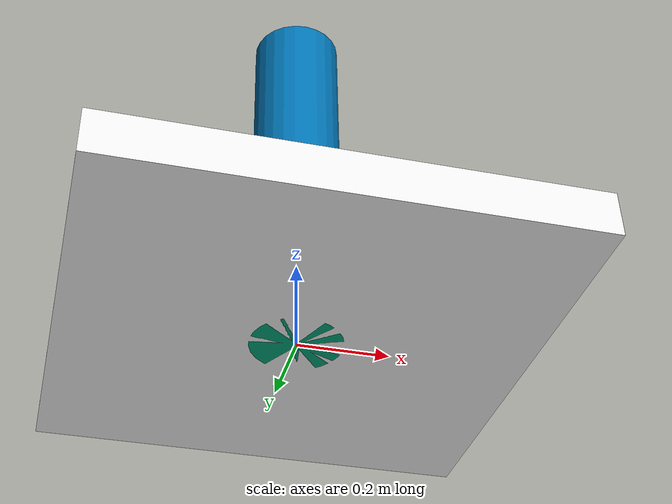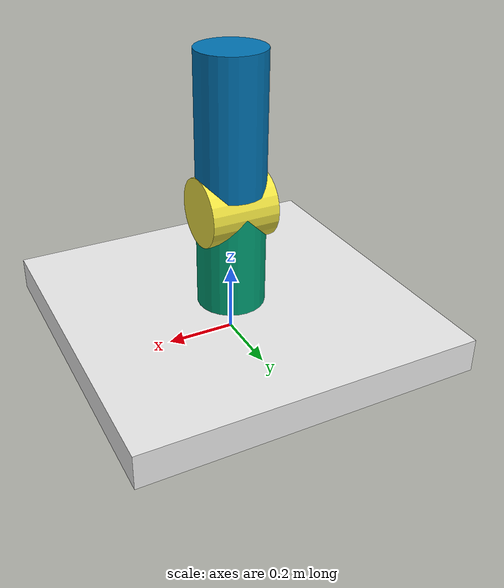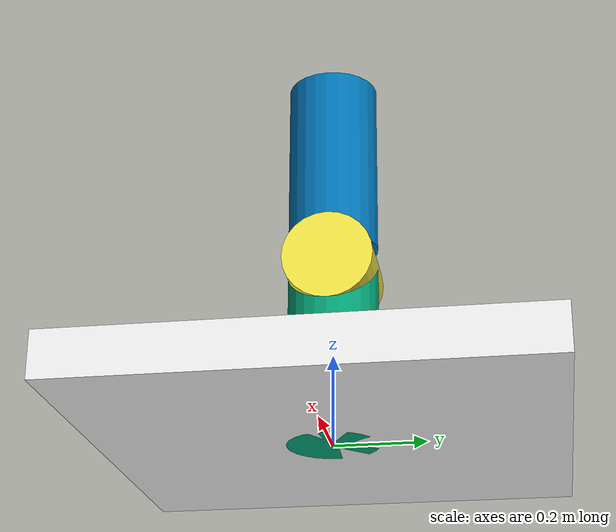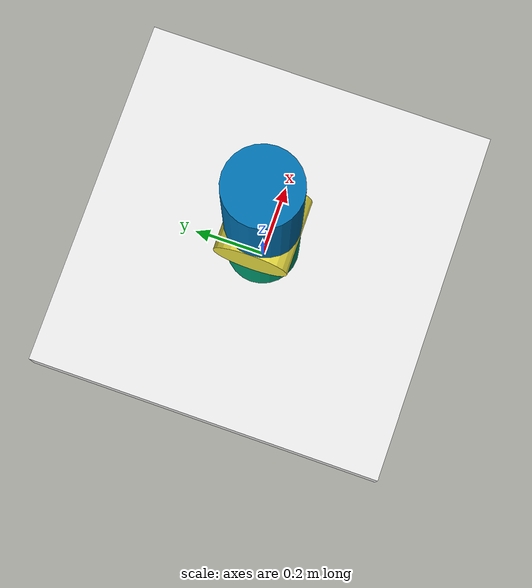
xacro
<?xml version="1.0" ?>
<robot xmlns:xacro="http://www.ros.org/wiki/xacro" name="snake_joint_world">

    <link name="world"/>

    <xacro:include filename="./snake_joint.xacro" />
    <xacro:include filename="./snake_joint.gazebo"/>

    <gazebo>
        <plugin name="gazebo_ros_control" filename="libgazebo_ros_control.so">
            <robotNamespace>/single_joint</robotNamespace>
            <robotSimType>gazebo_ros_control/DefaultRobotHWSim</robotSimType>
        </plugin>
    </gazebo>

</robot>

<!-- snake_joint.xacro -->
<robot xmlns:xacro="http://www.ros.org/wiki/xacro" name="snake_joint">

    <xacro:property name="M_PI" value="3.1415926535897931" />

    <xacro:property name="MASS_1" value="0.75" />
    <xacro:property name="HEIGHT_1" value="0.1" />
    <xacro:property name="WIDTH_1" value="1" />
    <xacro:property name="BREADTH_1" value="1" />
    <xacro:property name="BASE_ORIGIN_X" value="0" />
    <xacro:property name="BASE_ORIGIN_Y" value="0" />
    <xacro:property name="BASE_ORIGIN_Z" value="${HEIGHT_1 / 2}" />

    <xacro:property name="MASS_2" value="0.10" />
    <xacro:property name="HEIGHT_2" value="0.1" />
    <xacro:property name="WIDTH_2" value="0.1" />
    <xacro:property name="BREADTH_2" value="0.1" />

    <xacro:property name="MASS_3" value="0.15" />
    <xacro:property name="RADIUS_3" value="0.15" />
    <xacro:property name="LENGTH_3" value="0.10" />

    <xacro:property name="MASS_4" value="1.0" />
    <xacro:property name="RADIUS_4" value="0.10" />
    <xacro:property name="LENGTH_4" value="0.40" />

    <xacro:property name="MASS_5" value="0.25" />
    <xacro:property name="RADIUS_5" value="0.10" />
    <xacro:property name="LENGTH_5" value="0.20" />

    <link name="base_link_rotation">
        <visual>
            <origin xyz="${BASE_ORIGIN_X} ${BASE_ORIGIN_Y} ${BASE_ORIGIN_Z}" rpy="0 0 0"/>
            <geometry>
                <box size="${WIDTH_1} ${BREADTH_1} ${HEIGHT_1}"/>
            </geometry>
        </visual>
        <collision>
            <origin xyz="${BASE_ORIGIN_X} ${BASE_ORIGIN_Y} ${BASE_ORIGIN_Z}" rpy="0 0 0"/>
            <geometry>
                <box size="${WIDTH_1} ${BREADTH_1} ${HEIGHT_1}"/>
            </geometry>
        </collision>
        <inertial>
            <origin xyz="${BASE_ORIGIN_X} ${BASE_ORIGIN_Y} ${BASE_ORIGIN_Z}" rpy="0 0 0"/>
            <mass value="${MASS_1}"/>
            <inertia ixx="${MASS_1 / 6.0 * (WIDTH_1 * WIDTH_1 + HEIGHT_1 * HEIGHT_1)}" ixy="0.0" ixz="0.0"
                     iyy="${MASS_1 / 6.0 * (HEIGHT_1 * HEIGHT_1 + WIDTH_1 * WIDTH_1)}" iyz="0.0"
                     izz="${MASS_1 / 6.0 * (WIDTH_1 * WIDTH_1 + WIDTH_1 * WIDTH_1)}"/>
        </inertial>
    </link>

    <link name="fixated_link">
        <visual>
            <origin xyz="0 0 ${LENGTH_4 / 2}" rpy="0 0 0" />
            <geometry>
                <cylinder radius="${RADIUS_4}" length="${LENGTH_4}" />
            </geometry>
        </visual>
        <collision>
            <origin xyz="0 0 ${LENGTH_4 / 2}" rpy="0 0 0" />
            <geometry>
                <cylinder radius="${RADIUS_4}" length="${LENGTH_4}" />
            </geometry>
        </collision>
        <inertial>
            <origin xyz="0 0 ${LENGTH_4 / 2}" rpy="0 0 0" />
            <mass value="${MASS_2}"/>
            <inertia ixx="${((MASS_2 * (LENGTH_4 * LENGTH_4)) / 12) + (MASS_2 * (RADIUS_4 * RADIUS_4)) / 4}" ixy="0.0" ixz="0.0"
                     iyy="${((MASS_2 * (LENGTH_4 * LENGTH_4)) / 12) + (MASS_2 * (RADIUS_4 * RADIUS_4)) / 4}" iyz="0.0"
                     izz="${(MASS_2 * (RADIUS_4 * RADIUS_4)) / 2}"/>
        </inertial>
    </link>

    <link name="pivot">
        <visual>
            <origin xyz="0 0 0" rpy="0 0 0" />
            <geometry>
                <cylinder radius="${RADIUS_5}" length="${LENGTH_5}" />
            </geometry>
        </visual>
        <collision>
            <origin xyz="0 0 0" rpy="0 0 0" />
            <geometry>
                <cylinder radius="${RADIUS_5}" length="${LENGTH_5}" />
            </geometry>
        </collision>
        <inertial>
            <origin xyz="0 0 0" rpy="0 0 0" />
            <mass value="${MASS_3}"/>
            <inertia ixx="${((MASS_3 * (LENGTH_5 * LENGTH_5)) / 12) + (MASS_3 * (RADIUS_5 * RADIUS_5)) / 4}" ixy="0.0" ixz="0.0"
                     iyy="${((MASS_3 * (LENGTH_5 * LENGTH_5)) / 12) + (MASS_3 * (RADIUS_5 * RADIUS_5)) / 4}" iyz="0.0"
                     izz="${(MASS_3 * (RADIUS_5 * RADIUS_5)) / 2}"/>
        </inertial>
    </link>

    <link name="moving_link">
        <visual>
            <origin xyz="${(LENGTH_4 / 2) + (RADIUS_5 / 2)} 0 0" rpy="0 ${M_PI / 2} 0" />
            <geometry>
                <cylinder radius="${RADIUS_4}" length="${LENGTH_4}" />
            </geometry>
        </visual>
        <collision>
            <origin xyz="${(LENGTH_4 / 2) + (RADIUS_5 / 2)} 0 0" rpy="0 ${M_PI / 2} 0" />
            <geometry>
                <cylinder radius="${RADIUS_4}" length="${LENGTH_4}" />
            </geometry>
        </collision>
        <inertial>
            <origin xyz="${(LENGTH_4 / 2) + (RADIUS_5 / 2)} 0 0" rpy="0 ${M_PI / 2} 0" />
            <mass value="${MASS_2}"/>
            <inertia ixx="${((MASS_2 * (LENGTH_4 * LENGTH_4)) / 12) + (MASS_2 * (RADIUS_4 * RADIUS_4)) / 4}" ixy="0.0" ixz="0.0"
                     iyy="${((MASS_2 * (LENGTH_4 * LENGTH_4)) / 12) + (MASS_2 * (RADIUS_4 * RADIUS_4)) / 4}" iyz="0.0"
                     izz="${(MASS_2 * (RADIUS_4 * RADIUS_4)) / 2}"/>
        </inertial>
    </link>

    <!--add a phantom of the moving link to display the desired position-->
    <link name="pivot_phantom">
        <visual>
            <origin xyz="0 0 0" rpy="0 0 0" />
            <geometry>
                <cylinder radius="${RADIUS_5}" length="${LENGTH_5}" />
            </geometry>
        </visual>

        <collision>
            <origin xyz="0 0 0" rpy="0 0 0" />
            <geometry>
                <cylinder radius="${RADIUS_5}" length="${LENGTH_5}" />
            </geometry>
        </collision>

        <inertial>
            <origin xyz="0 0 0" rpy="0 0 0" />
            <mass value="${MASS_3}"/>
            <inertia ixx="${((MASS_3 * (LENGTH_5 * LENGTH_5)) / 12) + (MASS_3 * (RADIUS_5 * RADIUS_5)) / 4}" ixy="0.0" ixz="0.0"
                     iyy="${((MASS_3 * (LENGTH_5 * LENGTH_5)) / 12) + (MASS_3 * (RADIUS_5 * RADIUS_5)) / 4}" iyz="0.0"
                     izz="${(MASS_3 * (RADIUS_5 * RADIUS_5)) / 2}"/>
        </inertial>
    </link>

    <link name="moving_link_phantom">
        <inertial>
            <origin xyz="${(LENGTH_4 / 2) + (RADIUS_5 / 2)} 0 0" rpy="0 ${M_PI / 2} 0" />
            <mass value= "1.0"/>
            <inertia ixx="0.0" ixy="0.0" ixz="0.0"
                     iyy="0.0" iyz="0.0"
                     izz="0.0"/>
        </inertial>
        <visual>
            <origin xyz="${(LENGTH_4 / 2) + (RADIUS_5 / 2)} 0 0" rpy="0 ${M_PI / 2} 0" />
            <geometry>
                <cylinder radius="${RADIUS_4}" length="${LENGTH_4}" />
            </geometry>
            <material name="MyGreen">
                <ambient>0 1 0 1</ambient>
                <diffuse>0 1 0 1</diffuse>
                <color rgba="0 1.0 0.5 1.0"/>
            </material>
        </visual>
        <collision>
            <origin xyz="100000 0 0" rpy="0 ${M_PI / 2} 0" />
            <geometry>
                <cylinder radius="${RADIUS_4}" length="${LENGTH_4}" />
            </geometry>
        </collision>
    </link>

    <joint name="world_to_base" type="fixed">
        <parent link="world"/>
        <child link="base_link_rotation"/>
    </joint>

    <joint name="base_to_fixated" type="fixed">
        <parent link="base_link_rotation"/>
        <child link="fixated_link"/>
    </joint>

    <joint name="fixated_to_pivot" type="revolute">
        <parent link="fixated_link" />
        <child link="pivot" />
        <axis xyz="0 0 1" />
        <origin xyz="0 0 ${LENGTH_4}" rpy="0 -${M_PI / 2} 0"/>
        <dynamics damping="1"/>
        <limit effort="1000.0" lower="${-M_PI / 2}" upper="${M_PI / 2}" velocity="1.0" />
    </joint>

    <joint name="pivot_to_moving_link" type="fixed">
        <parent link="pivot" />
        <child link="moving_link" />
    </joint>

    <!--add a phantom of the moving link to display the desired position-->
    <joint name="fixated_to_pivot_phantom" type="revolute">
        <parent link="fixated_link" />
        <child link="pivot_phantom" />
        <axis xyz="0 0 1" />
        <origin xyz="0 0 ${LENGTH_4}" rpy="0 -${M_PI / 2} 0"/>
        <limit effort="1000.0" lower="${-M_PI / 2}" upper="${M_PI / 2}" velocity="1.0" />
    </joint>

    <joint name="pivot_to_moving_link_phantom" type="fixed">
        <parent link="pivot_phantom" />
        <child link="moving_link_phantom" />
    </joint>
    -->

    <transmission name="motor_tran">
        <type>transmission_interface/SimpleTransmission</type>
        <joint name="fixated_to_pivot">
            <hardwareInterface>hardware_interface/EffortJointInterface</hardwareInterface>
        </joint>
        <actuator name="motor">
            <hardwareInterface>hardware_interface/EffortJointInterface</hardwareInterface>
            <mechanicalReduction>1</mechanicalReduction>
        </actuator>
    </transmission>
<!--Added for phantom-->

    <transmission name="motor_tran_phantom">
        <type>transmission_interface/SimpleTransmission</type>
        <joint name="fixated_to_pivot_phantom">
            <hardwareInterface>hardware_interface/EffortJointInterface</hardwareInterface>
        </joint>
        <actuator name="motor_phantom">
            <hardwareInterface>hardware_interface/EffortJointInterface</hardwareInterface>
            <mechanicalReduction>1</mechanicalReduction>
        </actuator>
    </transmission>

</robot>
